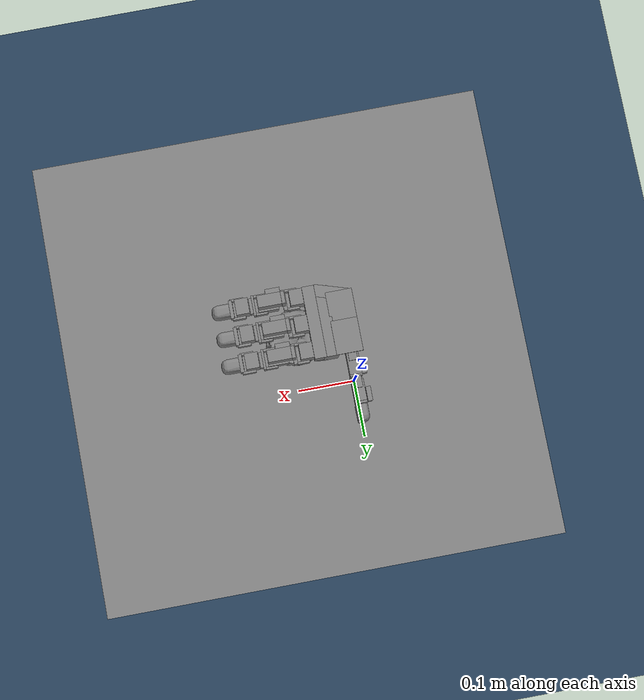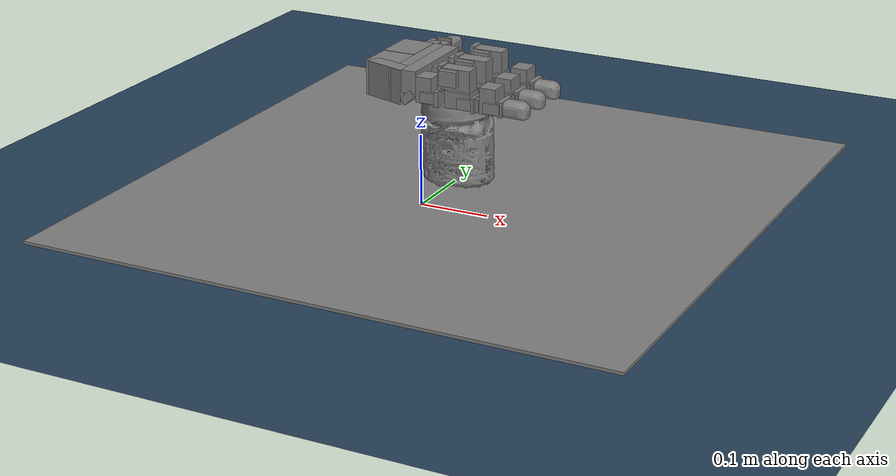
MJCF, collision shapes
<?xml version='1.0' encoding='utf-8'?>
<mujoco model="right_allegro_hand scene">
  <include file="right_hand_grasp_nuetella.xml"/>

  <statistic center="0 0 0" extent="0.3" />

  <visual>
    <rgba haze="0.15 0.25 0.35 1" />
    <quality shadowsize="8192" />
    <global azimuth="130" elevation="-40" />

  </visual>

  <asset>
    <texture type="skybox" builtin="gradient" rgb1="0.3 0.5 0.7" rgb2="0 0 0" width="512" height="3072" />
    <texture type="2d" name="groundplane" builtin="checker" mark="edge" rgb1="0.2 0.3 0.4" rgb2="0.1 0.2 0.3" markrgb="0.8 0.8 0.8" width="300" height="300" />
    <material name="groundplane" texture="groundplane" texuniform="true" texrepeat="5 5" reflectance="0.2" />

    <texture name="grid" type="2d" builtin="checker" width="512" height="512" rgb1=".1 .2 .3" rgb2=".2 .3 .4"/>
    <material name="grid" texture="grid" texrepeat="1 1" texuniform="true" reflectance=".2"/>

    <mesh name="my_mesh" file="nuetella.stl"  scale="1 1 1" />
  </asset>

  <worldbody>
    <light pos="0 0 1" />
    <light pos="0.3 0 1.5" dir="0 0 -1" directional="true" />
    <camera name="top" focal="1.93e-3 1.93e-3" resolution="1280 720" sensorsize="3896e-6 2140e-6"
            pos="0 0 0.6" mode="fixed" quat="1 0 0 0"/>
        <camera name="side" focal="1.93e-3 1.93e-3" resolution="1280 720" sensorsize="3896e-6 2140e-6"
            pos="0 -0.5 0.1" mode="fixed" quat="0.7 0.7 0 0"/>
    <geom name="floor" pos="0 0 0.05" size="0 0 0.05" type="plane" material="grid"  condim="3"/>

	  <body name="nuetella" pos="0.095 -0.07 0.14" quat="0 0.707 0.707 0 ">

	   <freejoint />

	    <geom name="nuetella" type="mesh" mesh="my_mesh" condim="3" mass="0.5"  friction="0.05 0.005 0.0001" />
	  </body>

	  <body name="plate" pos="0.095 -0.07 0.06" quat="1 0.0 0.0 0.0">

	    <geom name="plate" type="box" size='0.4 0.4 0.002' />
	  </body>

  </worldbody>
</mujoco>

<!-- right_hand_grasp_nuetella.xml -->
<mujoco model="leap_rh">
  <compiler angle="radian" meshdir="./assets/"/>
  <option integrator="implicitfast" cone="elliptic" impratio="100"/>

  <!-- mesh assets -->
  <asset>
    <material name="black" rgba="0.2 0.2 0.2 1" />

    <mesh name="palm" file="palm_right.obj"/>
    <mesh name="base" file="base.obj"/>
    <mesh name="proximal" file="proximal.obj"/>
    <mesh name="medial" file="medial.obj"/>
    <mesh name="distal" file="distal.obj"/>
    <mesh name="tip" file="tip.obj"/>
    <mesh name="thumb_base" file="thumb_base.obj"/>
    <mesh name="thumb_proximal" file="thumb_proximal.obj"/>
    <mesh name="thumb_distal" file="thumb_distal.obj"/>
    <mesh name="thumb_tip" file="thumb_tip.obj"/>
  </asset>

  <!-- defaults -->
  <default>
    <!-- constraint stiffness -->
    <geom solimp="0.999 0.999 0.001 0.0001 1" solref="0.0001 1" friction=".2"/>

    <!-- actuator defaults -->
    <position kp="3.0" kv="0.01" />
    <joint damping="0.03"  armature=".01" frictionloss="0.001" limited="true" solimplimit="0 .99 .01"/>

    <!-- geom class defaults -->
    <default class="visual">
      <geom group="1" type="mesh" contype="0" conaffinity="0" density="0" material="black" />
    </default>
    <default class="tip">
      <geom type="mesh" mesh="tip" friction="0.5"/>
    </default>
    <default class="thumb_tip">
      <geom type="mesh" mesh="thumb_tip" friction="0.5"/>
    </default>

    <!-- joint class defaults -->
    <default class="mcp">
      <joint pos="0 0 0" axis="0 0 -1"
        limited="true" range="-0.314 2.23" />
      <position ctrlrange="-0.314 2.23" />
    </default>
    <default class="rot">
      <joint pos="0 0 0" axis="0 0 -1"
        limited="true" range="-1.047 1.047" />
      <position ctrlrange="-1.047 1.047" />
    </default>
    <default class="pip">
      <joint pos="0 0 0" axis="0 0 -1"
        limited="true" range="-0.506 1.885" />
      <position ctrlrange="-0.506 1.885" />
    </default>
    <default class="dip">
      <joint pos="0 0 0" axis="0 0 -1"
        limited="true" range="-0.366 2.042" />
      <position ctrlrange="-0.366 2.042" />
    </default>
    <default class="thumb_cmc">
      <joint pos="0 0 0" axis="0 0 -1"
        limited="true" range="-0.349 2.094" />
      <position ctrlrange="-0.349 2.094" />
    </default>
    <default class="thumb_axl">
      <joint pos="0 0 0" axis="0 0 -1"
        limited="true" range="-0.349 2.094" />
      <position ctrlrange="-0.349 2.094" />
    </default>
    <default class="thumb_mcp">
      <joint pos="0 0 0" axis="0 0 -1"
        limited="true" range="-0.47 2.443" />
      <position ctrlrange="-0.47 2.443" />
    </default>
    <default class="thumb_ipl">
      <joint pos="0 0 0" axis="0 0 -1"
        limited="true" range="-1.34 1.88" />
      <position ctrlrange="-1.34 1.88" />
    </default>
  </default>

  <!-- collision filtering -->
  <contact>
    <!-- filter the palm from all other finger bodies except the tips -->
    <exclude body1="palm" body2="if_bs" />
    <exclude body1="palm" body2="mf_bs" />
    <exclude body1="palm" body2="rf_bs" />
    <exclude body1="palm" body2="th_mp" />

    <exclude body1="palm" body2="if_px" />
    <exclude body1="palm" body2="mf_px" />
    <exclude body1="palm" body2="rf_px" />
    <exclude body1="palm" body2="th_bs" />

    <exclude body1="palm" body2="if_md" />
    <exclude body1="palm" body2="mf_md" />
    <exclude body1="palm" body2="rf_md" />
    <exclude body1="palm" body2="th_px" />

    <!-- none of the base fingertip geoms can touch each other -->
    <exclude body1="if_bs" body2="mf_bs" />
    <exclude body1="if_bs" body2="rf_bs" />
    <exclude body1="mf_bs" body2="rf_bs" />

    <exclude body1="th_mp" body2="if_bs" />
    <exclude body1="th_mp" body2="mf_bs" />
    <exclude body1="th_mp" body2="rf_bs" />
  </contact>

  <!-- actuators -->
  <actuator>
    <!-- index -->
    <position name="if_mcp_act" joint="if_mcp" class="mcp" />
    <position name="if_rot_act" joint="if_rot" class="rot" />
    <position name="if_pip_act" joint="if_pip" class="pip" />
    <position name="if_dip_act" joint="if_dip" class="dip" />

    <!-- middle -->
    <position name="mf_mcp_act" joint="mf_mcp" class="mcp" />
    <position name="mf_rot_act" joint="mf_rot" class="rot" />
    <position name="mf_pip_act" joint="mf_pip" class="pip" />
    <position name="mf_dip_act" joint="mf_dip" class="dip" />

    <!-- ring -->
    <position name="rf_mcp_act" joint="rf_mcp" class="mcp" />
    <position name="rf_rot_act" joint="rf_rot" class="rot" />
    <position name="rf_pip_act" joint="rf_pip" class="pip" />
    <position name="rf_dip_act" joint="rf_dip" class="dip" />

    <!-- thumb -->
    <position name="th_cmc_act" joint="th_cmc" class="thumb_cmc" />
    <position name="th_axl_act" joint="th_axl" class="thumb_axl" />
    <position name="th_mcp_act" joint="th_mcp" class="thumb_mcp" />
    <position name="th_ipl_act" joint="th_ipl" class="thumb_ipl" />
  </actuator>

  <!-- sensors -->
  <sensor>
    <!-- index -->
    <jointpos name="if_mcp_sensor" joint="if_mcp" />
    <jointpos name="if_rot_sensor" joint="if_rot" />
    <jointpos name="if_pip_sensor" joint="if_pip" />
    <jointpos name="if_dip_sensor" joint="if_dip" />

    <!-- middle -->
    <jointpos name="mf_mcp_sensor" joint="mf_mcp" />
    <jointpos name="mf_rot_sensor" joint="mf_rot" />
    <jointpos name="mf_pip_sensor" joint="mf_pip" />
    <jointpos name="mf_dip_sensor" joint="mf_dip" />

    <!-- ring -->
    <jointpos name="rf_mcp_sensor" joint="rf_mcp" />
    <jointpos name="rf_rot_sensor" joint="rf_rot" />
    <jointpos name="rf_pip_sensor" joint="rf_pip" />
    <jointpos name="rf_dip_sensor" joint="rf_dip" />

    <!-- thumb -->
    <jointpos name="th_cmc_sensor" joint="th_cmc" />
    <jointpos name="th_axl_sensor" joint="th_axl" />
    <jointpos name="th_mcp_sensor" joint="th_mcp" />
    <jointpos name="th_ipl_sensor" joint="th_ipl" />
  </sensor>

  <worldbody>
    <body name="palm" pos="0.09 -0.05 0.23" quat="1 0 0 0">
      <!-- palm -->
      <inertial pos="-0.049542 -0.042914 -0.010227" quat="0.565586 0.427629 -0.574956 0.408254" mass="0.237" diaginertia="0.001 0.001 0.001"/>
      <geom name="palm_visual" pos="-0.02 0.02575 -0.0347" quat="1 0 0 0" class="visual" mesh="palm"/>
      <geom name="palm_collision_1" size="0.011 0.013 0.017" pos="-0.009 0.008 -0.011" type="box"/>
      <geom name="palm_collision_2" size="0.011 0.013 0.017" pos="-0.009 -0.037 -0.011" type="box"/>
      <geom name="palm_collision_3" size="0.011 0.013 0.017" pos="-0.009 -0.082 -0.011" type="box"/>
      <geom name="palm_collision_4" size="0.029 0.01 0.023" pos="-0.066 -0.078 -0.0115" quat="0.989016 0 0 -0.147806" type="box"/>
      <geom name="palm_collision_5" size="0.01 0.06 0.015" pos="-0.03 -0.035 -0.003" type="box"/>
      <geom name="palm_collision_6" size="0.005 0.06 0.01" pos="-0.032 -0.035 -0.024" quat="0.923956 0 0.382499 0" type="box"/>
      <geom name="palm_collision_7" size="0.012 0.058 0.023" pos="-0.048 -0.033 -0.0115" type="box"/>
      <geom name="palm_collision_8" size="0.022 0.026 0.023" pos="-0.078 -0.053 -0.0115" type="box"/>
      <geom name="palm_collision_9" size="0.002 0.018 0.017" pos="-0.098 -0.009 -0.006" type="box"/>
      <geom name="palm_collision_10" size="0.022 0.028 0.002" pos="-0.078 -0.003 0.01" type="box"/>

      <!-- index -->
      <body name="if_bs" pos="-0.007 0.023 -0.0187" quat="0.500003 0.5 0.5 -0.499997">
        <inertial pos="-0.022516 0.033882 0.016359" quat="0.388092 0.677951 -0.247713 0.573067" mass="0.044" diaginertia="0.001 0.001 0.001"/>
        <joint name="if_mcp" class="mcp"/>
        <geom name="if_bs_visual" pos="0.0084 0.0077 0.01465" quat="1 0 0 0" class="visual" mesh="base"/>
        <geom name="if_bs_collision_1" size="0.01 0.003 0.017" pos="0 0.018 0.0147" type="box"/>
        <geom name="if_bs_collision_2" size="0.014 0.02 0.01" pos="-0.027 0.042 0.015" type="box"/>
        <geom name="if_bs_collision_3" size="0.017 0.003 0.01" pos="-0.0262 0.02 0.0146" type="box"/>
        <geom name="if_bs_collision_4" size="0.01 0.012 0.004" pos="-0.0295 0.035 0.029" type="box"/>
        <geom name="if_bs_collision_5" size="0.007 0.01 0.002" pos="0 0.005 0.03" type="box"/>
        <geom name="if_bs_collision_6" size="0.007 0.01 0.002" pos="0 0.005 -0.001" type="box"/>

        <body name="if_px" pos="-0.0122 0.0381 0.0145" quat="0.500003 -0.5 -0.499997 0.5">
          <inertial pos="0.0075 -0.0002 -0.011" quat="0 0.707107 0 0.707107" mass="0.032" diaginertia="0.001 0.001 0.001"/>
          <joint name="if_rot" class="rot"/>
          <geom name="if_px_visual" pos="0.0096 0.0002 0.0007" quat="0.500003 -0.5 -0.5 -0.499997" class="visual" mesh="proximal"/>
          <geom name="if_px_collision" size="0.017 0.013 0.011" pos="0.0075 -0.0002 -0.011" type="box"/>

          <body name="if_md" pos="0.015 0.0143 -0.013" quat="0.500003 0.5 -0.5 0.499997">
            <inertial pos="0.0054215 -0.029148 0.015" quat="0.687228 0.687228 0.166487 0.166487" mass="0.037" diaginertia="0.001 0.001 0.001"/>
            <joint name="if_pip" class="pip"/>
            <geom name="if_md_visual" pos="0.0211 -0.0084 0.0097" quat="2.67949e-08 -1 0 0" class="visual" mesh="medial"/>
            <geom name="if_md_collision_1" size="0.008 0.003 0.013" pos="0 -0.02 0.015" type="box"/>
            <geom name="if_md_collision_2" size="0.01 0.002 0.017" pos="0 -0.016 0.015" type="box"/>
            <geom name="if_md_collision_3" size="0.007 0.01 0.002" pos="0 -0.0045 0.03" type="box"/>
            <geom name="if_md_collision_4" size="0.007 0.01 0.002" pos="0 -0.0045 0" type="box"/>
            <geom name="if_md_collision_5" size="0.017 0.011 0.013" pos="0.0075 -0.035 0.015" type="box"/>

            <body name="if_ds" pos="0 -0.0361 0.0002">
              <inertial pos="-0.0008794 -0.027019 0.014594" quat="0.702905 0.710643 -0.0212937 -0.0214203" mass="0.016" diaginertia="0.001 0.001 0.001"/>
              <joint name="if_dip" class="dip"/>
              <geom name="if_ds_visual" pos="0.0132 -0.0061 0.0144" quat="2.67949e-08 1 0 0" class="visual" mesh="distal"/>
              <geom name="if_ds_collision_1" size="0.01 0.003 0.015" pos="0 -0.017 0.015" type="box"/>
              <geom name="if_ds_collision_2" size="0.007 0.011 0.002" pos="0 -0.006 0.03" type="box"/>
              <geom name="if_ds_collision_3" size="0.007 0.011 0.002" pos="0 -0.006 -0.001" type="box"/>

              <geom name="if_tip" class="tip"/>
            </body>

          </body>
        </body>
      </body>  <!-- index -->

      <!-- middle -->
      <body name="mf_bs" pos="-0.0071 -0.0224 -0.0187" quat="0.500003 0.5 0.5 -0.499997">
        <inertial pos="-0.022516 0.033882 0.016359" quat="0.388092 0.677951 -0.247713 0.573067" mass="0.044" diaginertia="0.001 0.001 0.001"/>
        <joint name="mf_mcp" class="mcp"/>
        <geom name="mf_bs_visual" pos="0.0084 0.0077 0.01465" quat="1 0 0 0" class="visual" mesh="base"/>
        <geom name="mf_bs_collision_1" size="0.01 0.003 0.017" pos="0 0.018 0.0147" type="box"/>
        <geom name="mf_bs_collision_2" size="0.014 0.02 0.01" pos="-0.027 0.042 0.015" type="box"/>
        <geom name="mf_bs_collision_3" size="0.017 0.003 0.01" pos="-0.0262 0.02 0.0146" type="box"/>
        <geom name="mf_bs_collision_4" size="0.01 0.012 0.004" pos="-0.0295 0.035 0.029" type="box"/>
        <geom name="mf_bs_collision_5" size="0.007 0.01 0.002" pos="0 0.005 0.03" type="box"/>
        <geom name="mf_bs_collision_6" size="0.007 0.01 0.002" pos="0 0.005 -0.001" type="box"/>

        <body name="mf_px" pos="-0.0122 0.0381 0.0145" quat="0.500003 -0.5 -0.499997 0.5">
          <inertial pos="0.0075 -0.0002 -0.011" quat="0 0.707107 0 0.707107" mass="0.032" diaginertia="0.001 0.001 0.001"/>
          <joint name="mf_rot" class="rot"/>
          <geom name="mf_px_visual" pos="0.0096 0.0003 0.0007" quat="0.500003 -0.5 -0.5 -0.499997" class="visual" mesh="proximal"/>
          <geom name="mf_px_collision" size="0.017 0.013 0.011" pos="0.0075 -0.0002 -0.011" type="box"/>

          <body name="mf_md" pos="0.015 0.0143 -0.013" quat="0.500003 0.5 -0.5 0.499997">
            <inertial pos="0.0054215 -0.029148 0.015" quat="0.687228 0.687228 0.166487 0.166487" mass="0.037" diaginertia="0.001 0.001 0.001"/>
            <joint name="mf_pip" class="pip"/>
            <geom name="mf_md_visual" pos="0.0211 -0.0084 0.0097" quat="1.32679e-06 -1 0 0" class="visual" mesh="medial"/>
            <geom name="mf_md_collision_1" size="0.008 0.003 0.013" pos="0 -0.02 0.015" type="box"/>
            <geom name="mf_md_collision_2" size="0.01 0.002 0.017" pos="0 -0.016 0.015" type="box"/>
            <geom name="mf_md_collision_3" size="0.007 0.01 0.002" pos="0 -0.0045 0.03" type="box"/>
            <geom name="mf_md_collision_4" size="0.007 0.01 0.002" pos="0 -0.0045 0" type="box"/>
            <geom name="mf_md_collision_5" size="0.017 0.011 0.013" pos="0.0075 -0.035 0.015" type="box"/>

            <body name="mf_ds" pos="0 -0.0361 0.0002">
              <inertial pos="-0.0008794 -0.027019 0.014594" quat="0.702905 0.710643 -0.0212937 -0.0214203" mass="0.016" diaginertia="0.001 0.001 0.001"/>
              <joint name="mf_dip" class="dip"/>
              <geom name="mf_ds_visual" pos="0.0132 -0.0061 0.0145" quat="1.32679e-06 1 0 0" class="visual" mesh="distal"/>
              <geom name="mf_ds_collision_1" size="0.01 0.003 0.015" pos="0 -0.017 0.015" type="box"/>
              <geom name="mf_ds_collision_2" size="0.007 0.011 0.002" pos="0 -0.006 0.03" type="box"/>
              <geom name="mf_ds_collision_3" size="0.007 0.011 0.002" pos="0 -0.006 -0.001" type="box"/>

              <geom name="mf_tip" class="tip"/>
            </body>

          </body>
        </body>
      </body>  <!-- middle -->

      <!-- ring -->
      <body name="rf_bs" pos="-0.00709 -0.0678 -0.0187" quat="0.500003 0.5 0.5 -0.499997">
        <inertial pos="-0.022516 0.033882 0.016359" quat="0.388092 0.677951 -0.247713 0.573067" mass="0.044" diaginertia="0.001 0.001 0.001"/>
        <joint name="rf_mcp" class="mcp"/>
        <geom name="rf_bs_visual" pos="0.0084 0.0077 0.01465" quat="1 0 0 0" class="visual" mesh="base"/>
        <geom name="rf_bs_collision_1" size="0.01 0.003 0.017" pos="0 0.018 0.0147" type="box"/>
        <geom name="rf_bs_collision_2" size="0.014 0.02 0.01" pos="-0.027 0.042 0.015" type="box"/>
        <geom name="rf_bs_collision_3" size="0.017 0.003 0.01" pos="-0.0262 0.02 0.0146" type="box"/>
        <geom name="rf_bs_collision_4" size="0.01 0.012 0.004" pos="-0.0295 0.035 0.029" type="box"/>
        <geom name="rf_bs_collision_5" size="0.007 0.01 0.002" pos="0 0.005 0.03" type="box"/>
        <geom name="rf_bs_collision_6" size="0.007 0.01 0.002" pos="0 0.005 -0.001" type="box"/>

        <body name="rf_px" pos="-0.0122 0.0381 0.0145" quat="0.500003 -0.5 -0.499997 0.5">
          <inertial pos="0.0075 -0.0002 -0.011" quat="0 0.707107 0 0.707107" mass="0.032" diaginertia="0.001 0.001 0.001"/>
          <joint name="rf_rot" class="rot"/>
          <geom name="rf_px_visual" pos="0.0096 0.0003 0.0007" quat="0.500003 -0.5 -0.5 -0.499997" class="visual" mesh="proximal"/>
          <geom name="rf_px_collision" size="0.017 0.013 0.011" pos="0.0075 -0.0002 -0.011" type="box"/>

          <body name="rf_md" pos="0.015 0.0143 -0.013" quat="0.500003 0.5 -0.5 0.499997">
            <inertial pos="0.0054215 -0.029148 0.015" quat="0.687228 0.687228 0.166487 0.166487" mass="0.037" diaginertia="0.001 0.001 0.001"/>
            <joint name="rf_pip" class="pip"/>
            <geom name="rf_md_visual" pos="0.0211 -0.0084 0.0097" quat="1.32679e-06 -1 0 0" class="visual" mesh="medial"/>
            <geom name="rf_md_collision_1" size="0.008 0.003 0.013" pos="0 -0.02 0.015" type="box"/>
            <geom name="rf_md_collision_2" size="0.01 0.002 0.017" pos="0 -0.016 0.015" type="box"/>
            <geom name="rf_md_collision_3" size="0.007 0.01 0.002" pos="0 -0.0045 0.03" type="box"/>
            <geom name="rf_md_collision_4" size="0.007 0.01 0.002" pos="0 -0.0045 0" type="box"/>
            <geom name="rf_md_collision_5" size="0.017 0.011 0.013" pos="0.0075 -0.035 0.015" type="box"/>

            <body name="rf_ds" pos="0 -0.03609 0.0002">
              <inertial pos="-0.0008794 -0.027019 0.014594" quat="0.702905 0.710643 -0.0212937 -0.0214203" mass="0.016" diaginertia="0.001 0.001 0.001"/>
              <joint name="rf_dip" class="dip"/>
              <geom name="rf_ds_visual" pos="0.0132 -0.0061 0.0145" quat="1.32679e-06 1 0 0" class="visual" mesh="distal"/>
              <geom name="rf_ds_collision_1" size="0.01 0.003 0.015" pos="0 -0.017 0.015" type="box"/>
              <geom name="rf_ds_collision_2" size="0.007 0.011 0.002" pos="0 -0.006 0.03" type="box"/>
              <geom name="rf_ds_collision_3" size="0.007 0.011 0.002" pos="0 -0.006 -0.001" type="box"/>

              <geom name="rf_tip" class="tip"/>
            </body>

          </body>
        </body>
      </body>  <!-- ring -->

      <!-- thumb -->
      <body name="th_mp" pos="-0.0693 -0.0012 -0.0216" quat="0.707109 0 0.707105 0">
        <inertial pos="0.0075 -0.0002 -0.011" quat="0 0.707107 0 0.707107" mass="0.032" diaginertia="0.001 0.001 0.001"/>
        <joint name="th_cmc" class="thumb_cmc"/>
        <geom name="th_mp_visual" pos="-0.0053 0.0003 0.00078" quat="0.500003 -0.5 -0.5 -0.499997" class="visual" mesh="proximal"/>
        <geom name="th_mp_collision" size="0.017 0.013 0.011" pos="-0.0075 -0.0002 -0.011" type="box"/>

        <body name="th_bs" pos="0 0.0143 -0.013" quat="0.500003 0.5 -0.5 0.499997">
          <inertial pos="0 0 -0.0070806" quat="0.707107 0.707107 0 0" mass="0.003" diaginertia="0.001 0.001 0.001"/>
          <joint name="th_axl" class="thumb_axl"/>
          <geom name="th_bs_visual" pos="0.01196 0 -0.0158" quat="0.707109 0.707105 0 0" class="visual" mesh="thumb_base"/>
          <geom name="th_bs_collision_1" size="0.009 0.0165 0.002" pos="0 0 -0.0015" type="box"/>
          <geom name="th_bs_collision_2" size="0.007 0.002 0.01" pos="0 -0.015 -0.013" type="box"/>
          <geom name="th_bs_collision_3" size="0.007 0.002 0.01" pos="0 0.015 -0.013" type="box"/>

          <body name="th_px" pos="0 0.0145 -0.017" quat="0.707109 -0.707105 0 0">
            <inertial pos="-0.0020593 0.015912 -0.013733" quat="0.698518 0.697382 -0.104933 0.121324" mass="0.038" diaginertia="0.001 0.001 0.001"/>
            <joint name="th_mcp" class="thumb_mcp"/>
            <geom name="th_px_visual" pos="0.0439 0.0579 -0.0086" quat="1 0 0 0" class="visual" mesh="thumb_proximal"/>
            <geom name="th_px_collision_1" size="0.01 0.02 0.012" pos="0 0.0105 -0.014" type="box"/>
            <geom name="th_px_collision_2" size="0.01 0.002 0.016" pos="0 0.031 -0.015" type="box"/>
            <geom name="th_px_collision_3" size="0.007 0.01 0.002" pos="0 0.042 0.001" type="box"/>
            <geom name="th_px_collision_4" size="0.007 0.01 0.002" pos="0 0.042 -0.029" type="box"/>
            <geom name="th_px_collision_5" size="0.005 0.012 0.009" pos="-0.0135 0.0175 -0.011656" type="box"/>

            <body name="th_ds" pos="0 0.0466 0.0002" quat="1.32679e-06 0 0 1">
              <inertial pos="0.00096191 -0.024203 -0.014419" quat="0.35287 0.311272 -0.632839 0.614904" mass="0.049" diaginertia="0.001 0.001 0.001"/>
              <joint name="th_ipl" class="thumb_ipl"/>
              <geom name="th_ds_visual" pos="0.0625 0.0784 0.0489" quat="1 0 0 0" class="visual" mesh="thumb_distal"/>
              <geom name="th_ds_collision_1" size="0.01 0.018 0.012" pos="0 -0.0085 -0.015" type="box"/>
              <geom name="th_ds_collision_2" size="0.01 0.002 0.015" pos="0 -0.029 -0.014" type="box"/>
              <geom name="th_ds_collision_3" size="0.004 0.012 0.009" pos="0.015 -0.0175 -0.0115" type="box"/>

              <geom name="th_tip" class="thumb_tip"/>
            </body>

          </body>
        </body>
      </body>  <!-- thumb -->

    </body>  <!-- palm -->
  </worldbody>
</mujoco>
